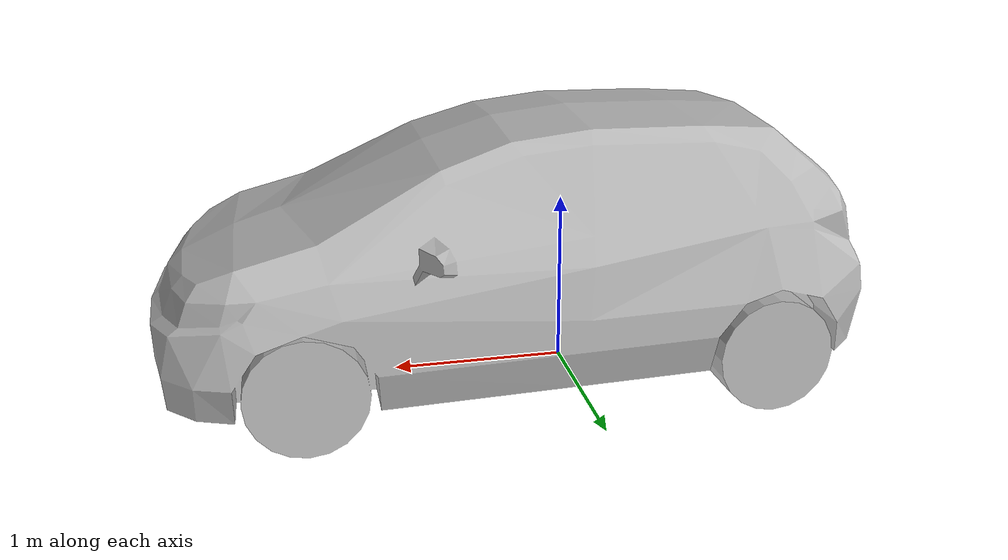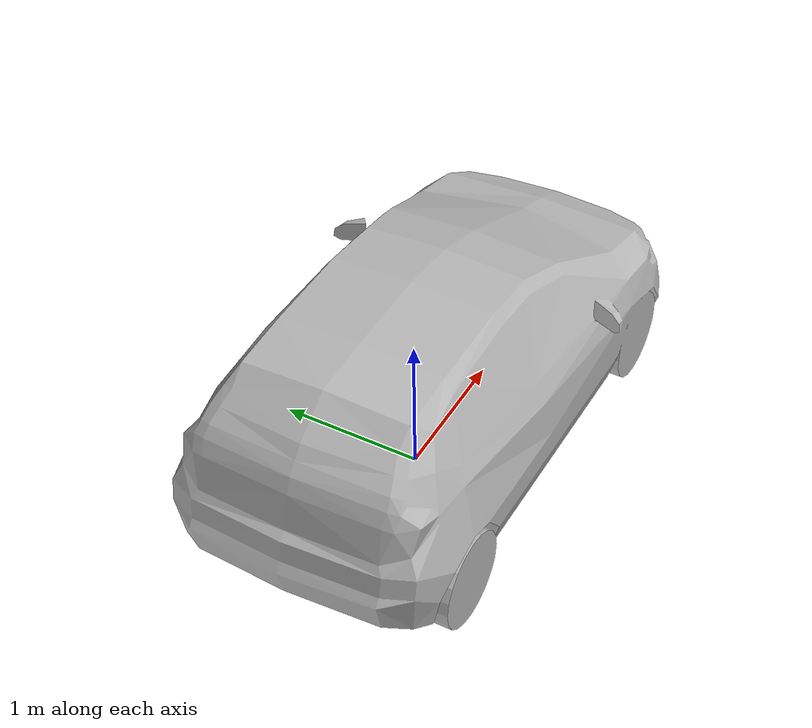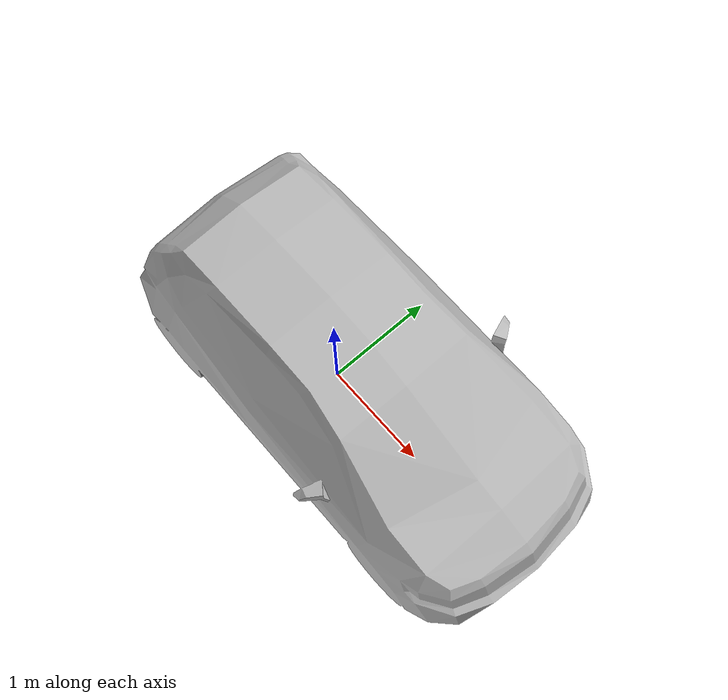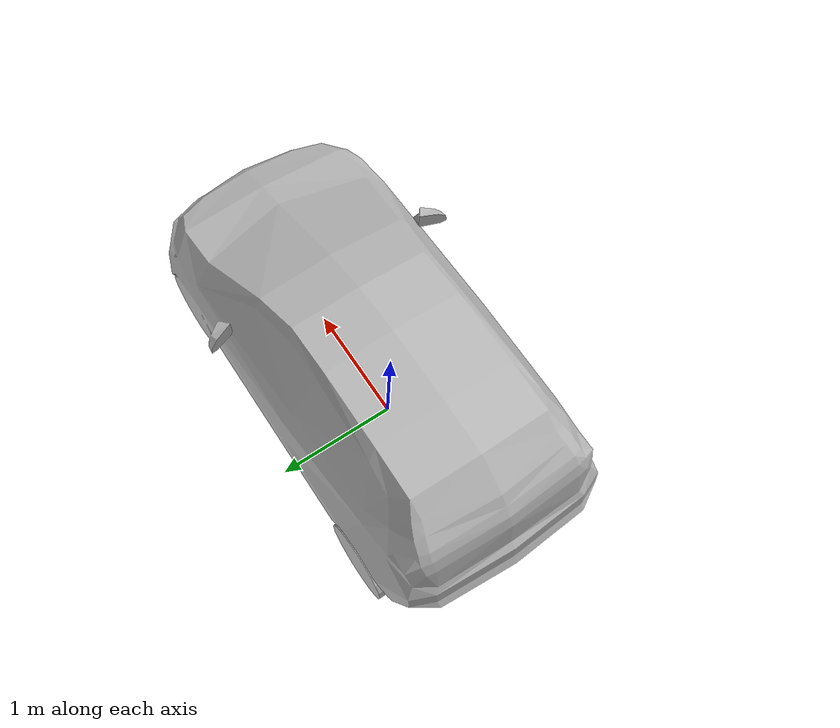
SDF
<?xml version="1.0" ?>
<sdf version="1.6">
    <model name="hatchback_red">
        <static>true</static>
        <link name="link">
            <collision name="collision">
                <pose>0 0 0 0 0 1.57079632679</pose>
                <geometry>
                    <mesh>
                        <scale>0.0254 0.0254 0.0254</scale>
                        <uri>meshes/hatchback_red.obj</uri>
                    </mesh>
                </geometry>
            </collision>
            <visual name="visual">
                <pose>0 0 0 0 0 1.57079632679</pose>
                <geometry>
                    <mesh>
                        <scale>0.0254 0.0254 0.0254</scale>
                        <uri>meshes/hatchback_red.obj</uri>
                    </mesh>
                </geometry>
            </visual>
        </link>
    </model>
</sdf>
